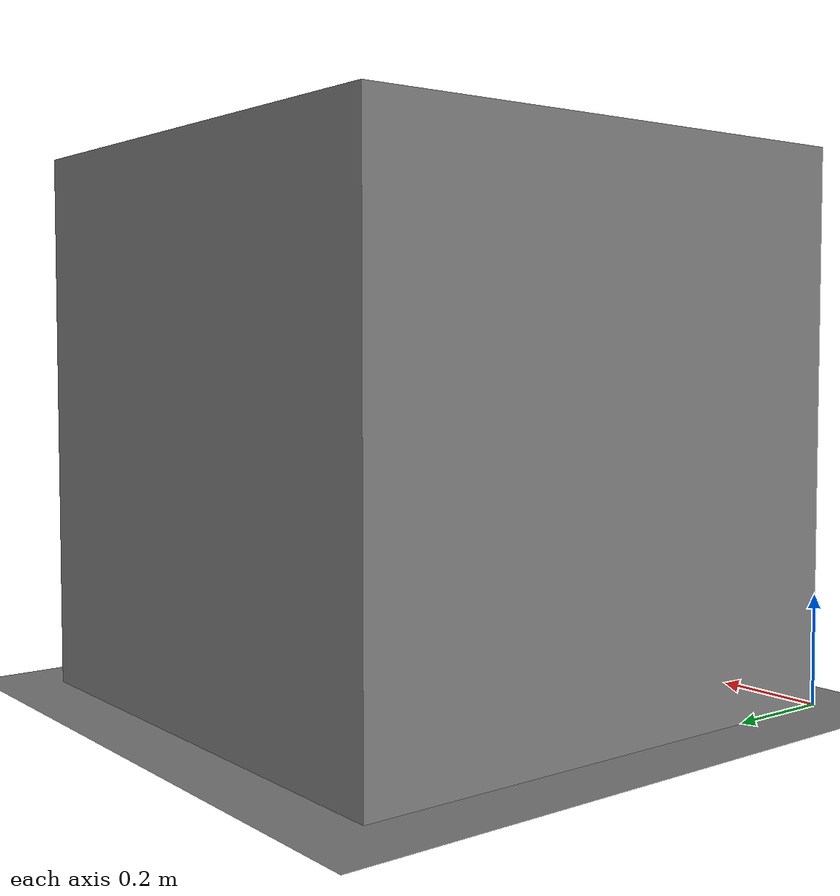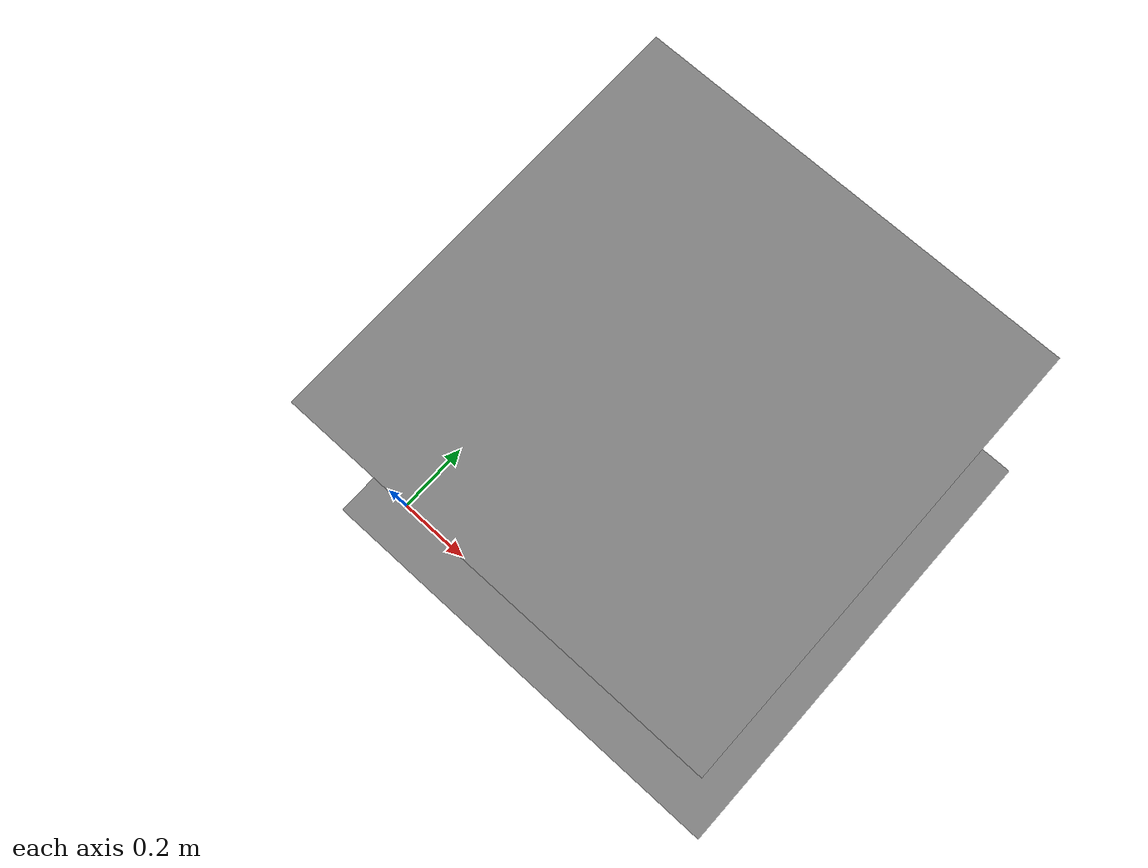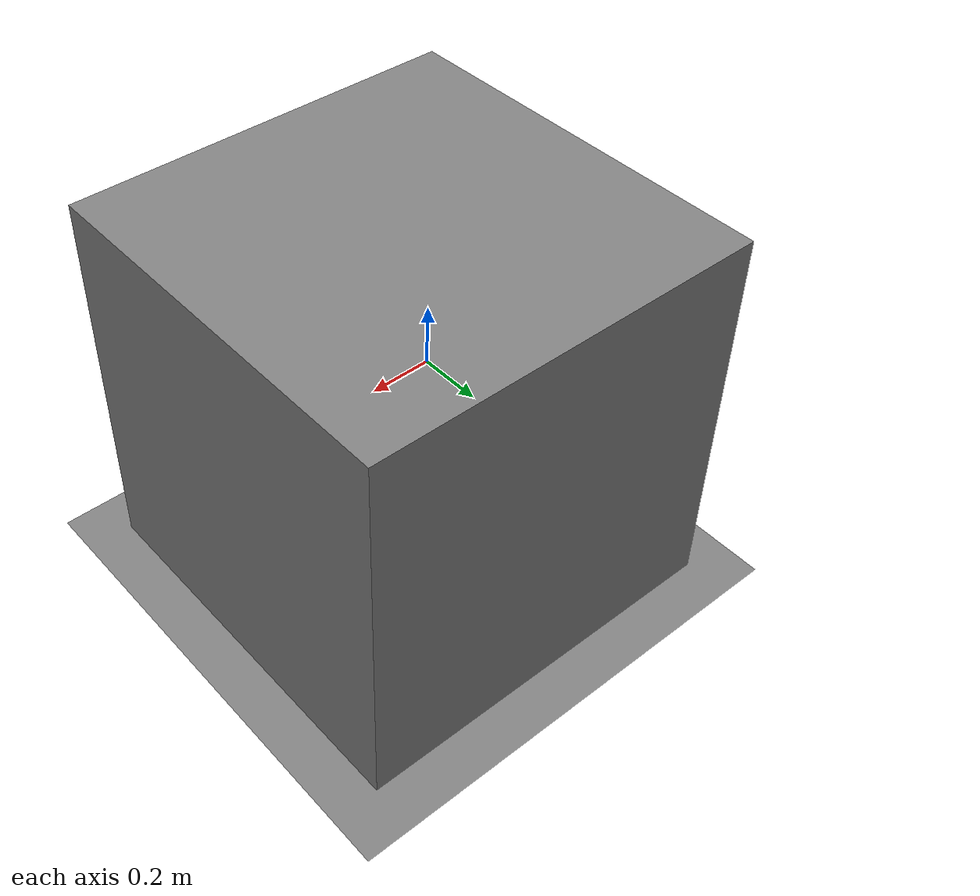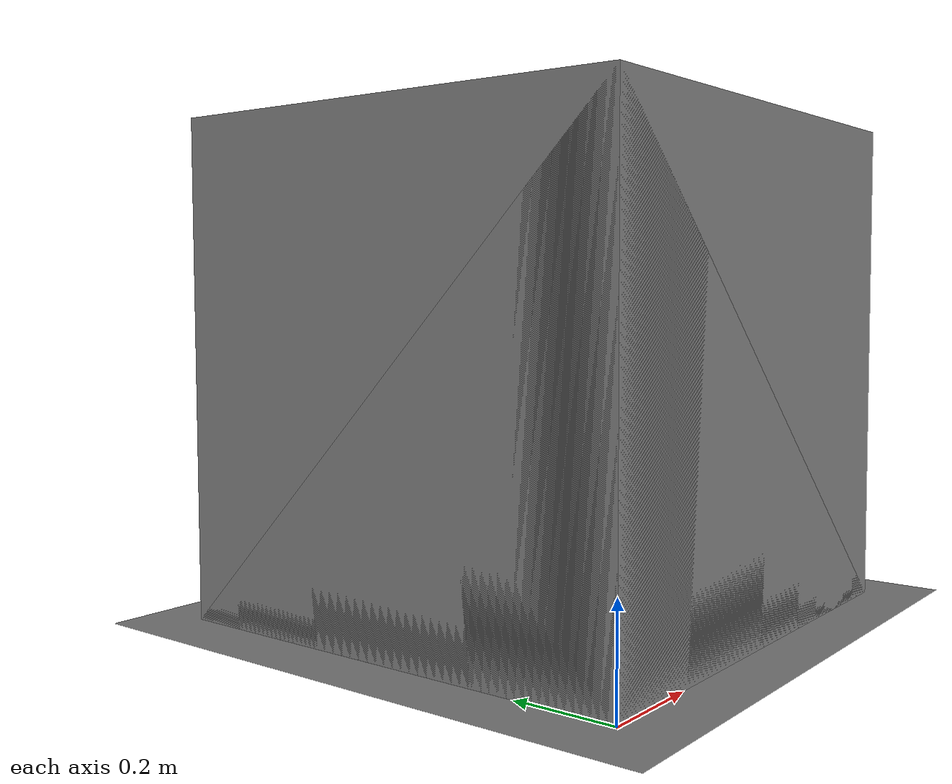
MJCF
<mujoco model="scene">
  <compiler meshdir="meshes"/>
  <include file="kid/robot.xml"/>
  <asset><mesh name="table_top" file="table.stl"/></asset>
  <worldbody>
    <geom name="floor" type="plane" size="0 0 0.05"/>
    <body name="table"><geom name="table_geom" type="mesh" mesh="table_top"/></body>
  </worldbody>
</mujoco>

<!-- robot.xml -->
<mujoco model="arm">
  <asset><mesh name="arm_link" file="arm.stl"/></asset>
  <worldbody><body name="arm"><geom name="arm_geom" type="mesh" mesh="arm_link"/></body></worldbody>
</mujoco>
